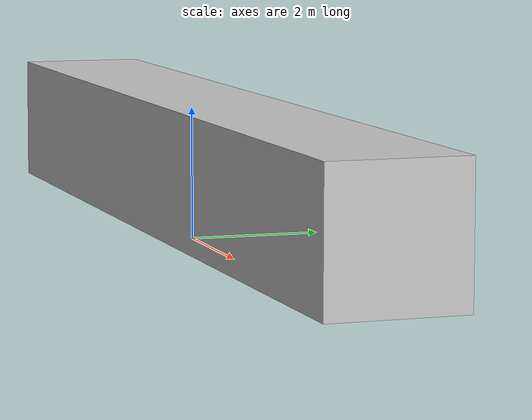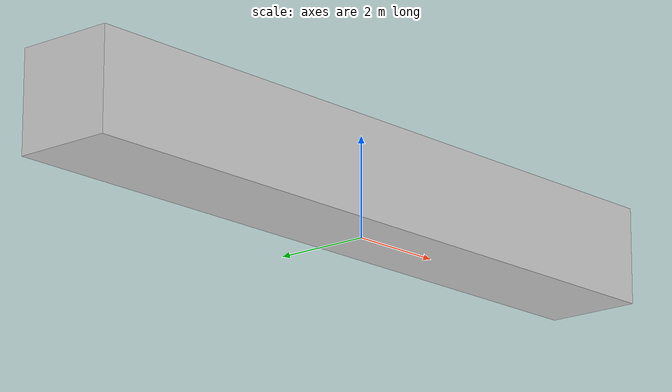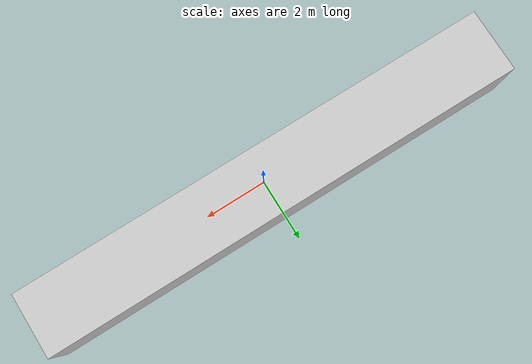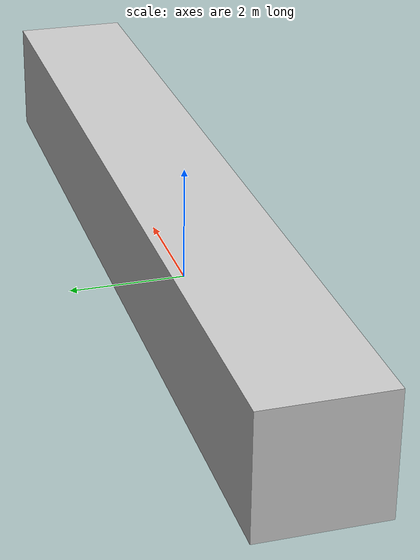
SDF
<?xml version="1.0" ?>
<sdf version="1.7">
  <model name="wall">
    <static>true</static>
    <link name="link">
      <collision name="collision">
        <geometry>
          <mesh>
            <uri>model://wall/meshes/wall.dae</uri>
          </mesh>
        </geometry>
      </collision>
      <visual name="visual">
        <geometry>
          <mesh>
            <uri>model://wall/meshes/wall.dae</uri>
          </mesh>
        </geometry>
      </visual>
    </link>
  </model>
</sdf>
